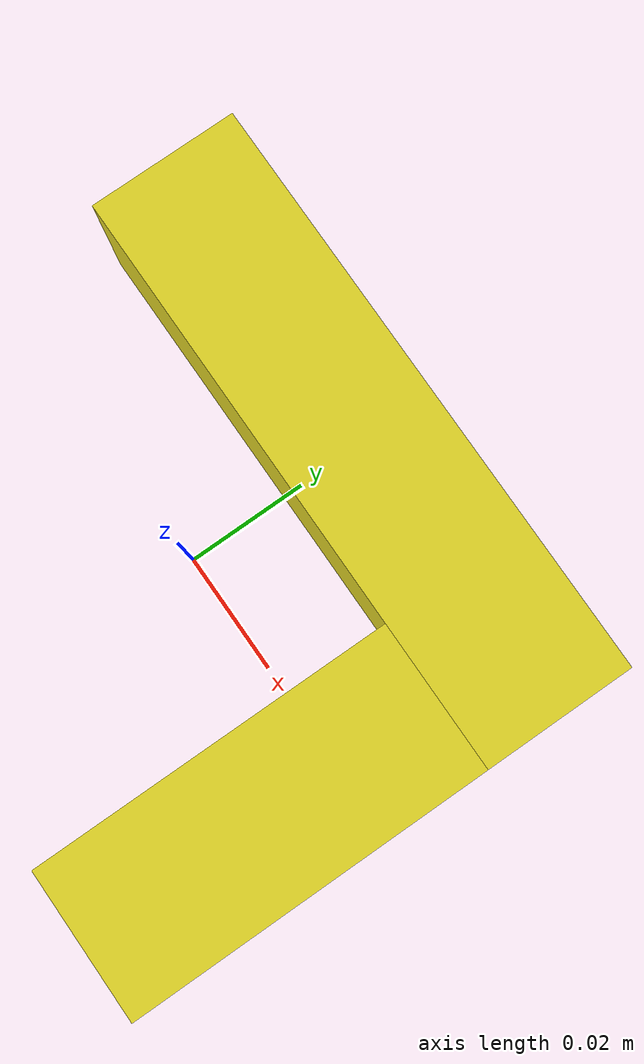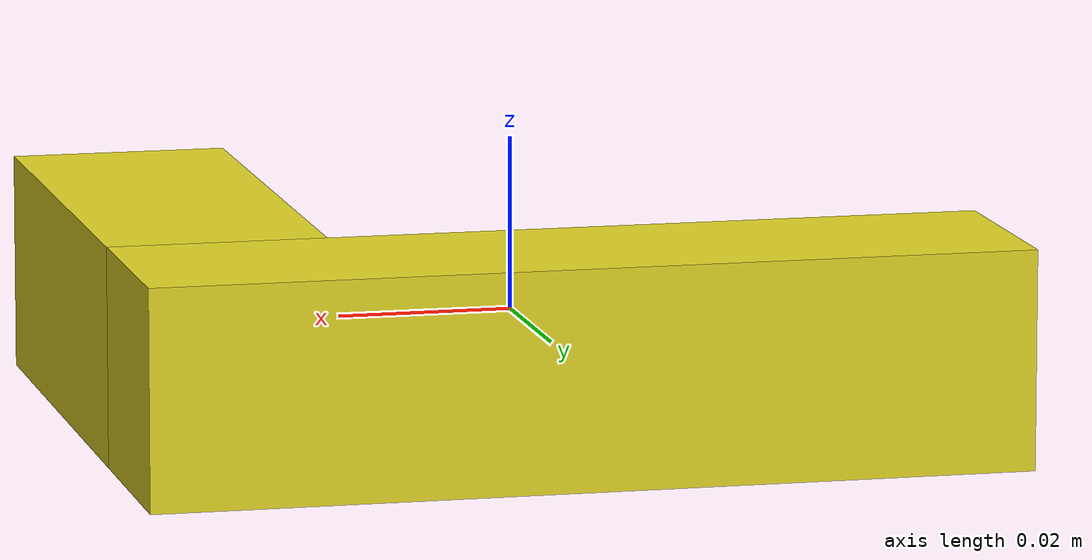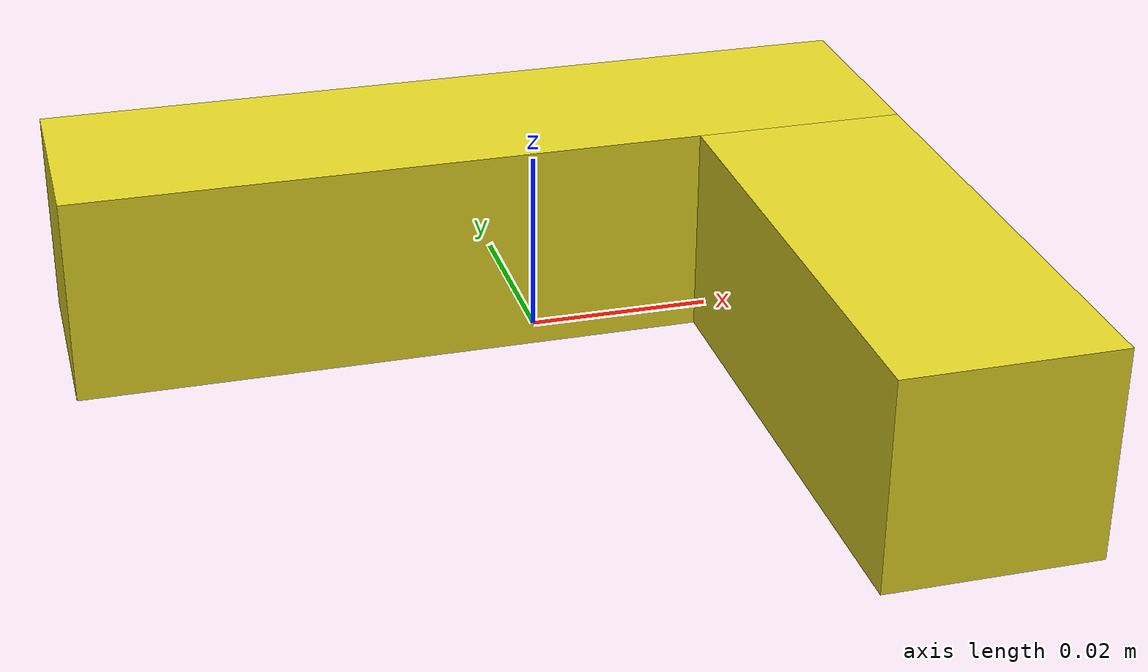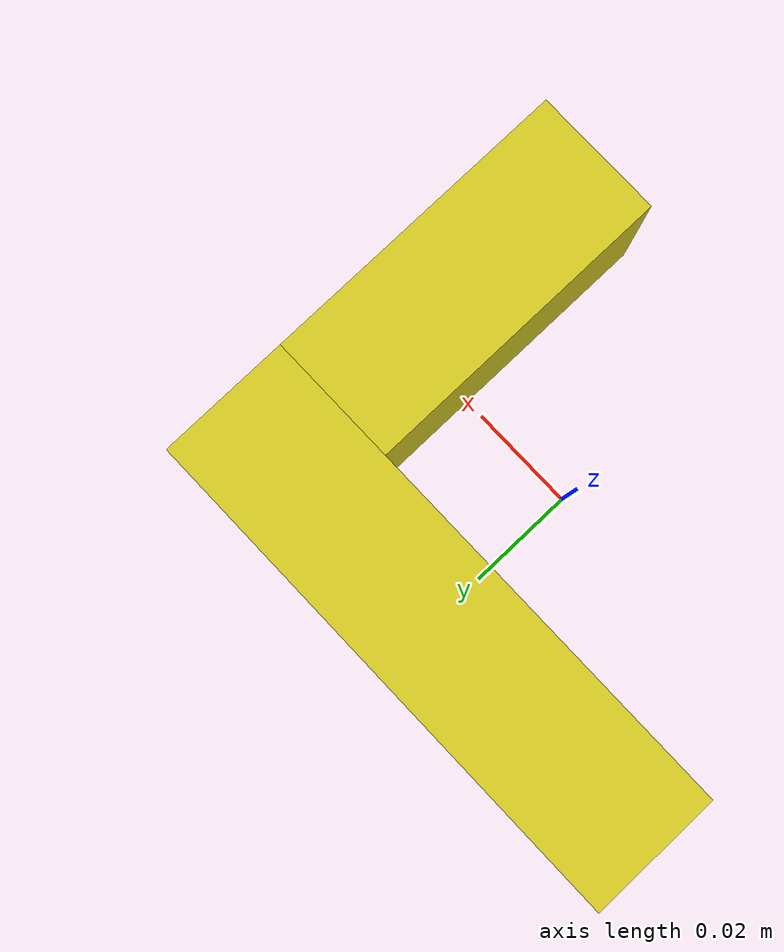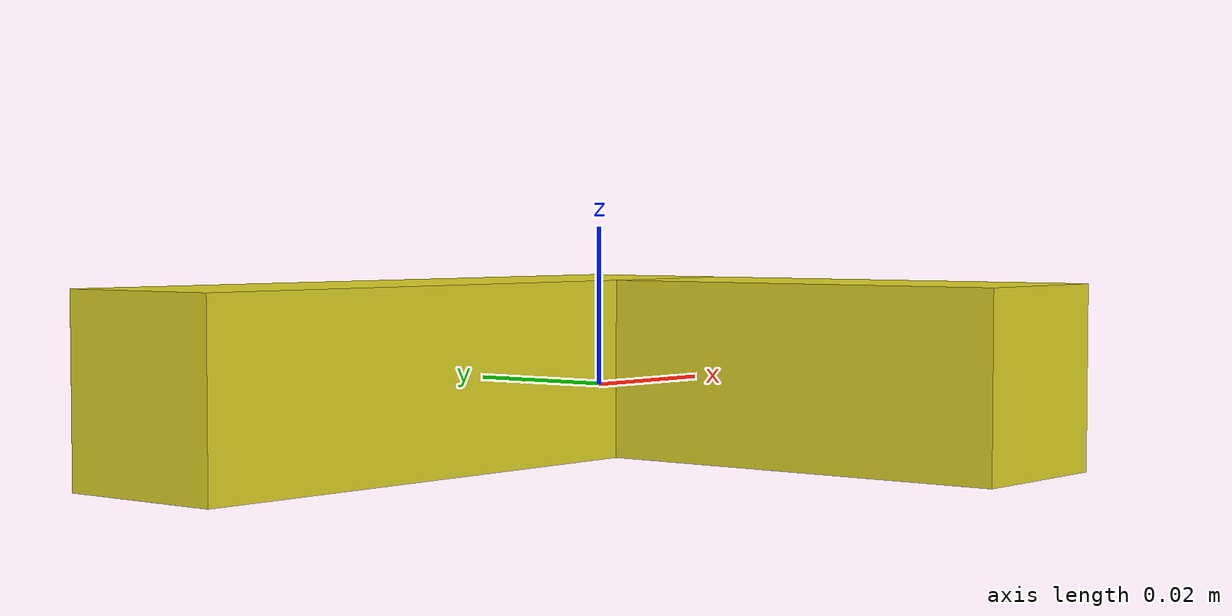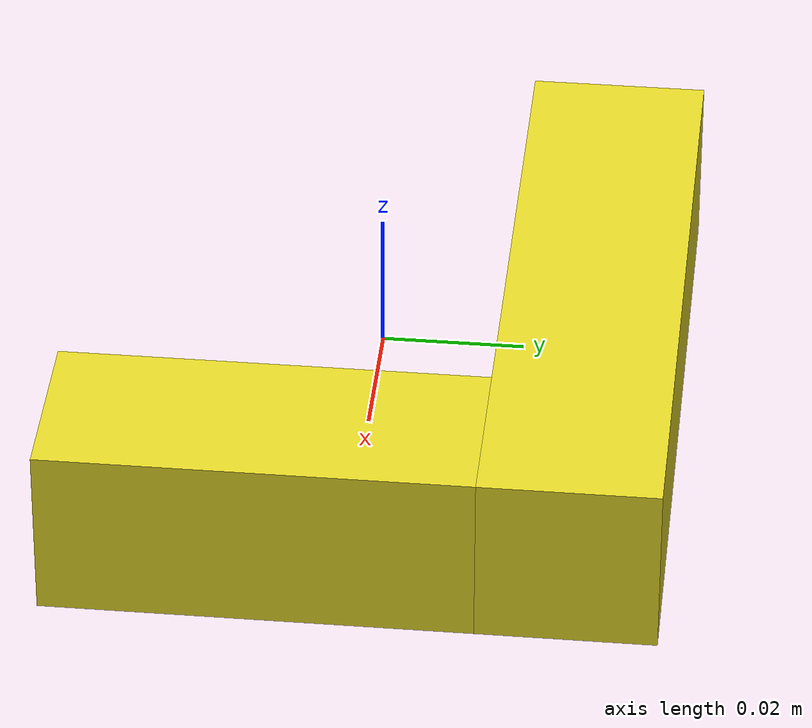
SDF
<?xml version='1.0'?>
<sdf version='1.6'>
  <model name='L_shape'>
    <link name='link'>
      <inertial>
        <mass>0.15</mass>
        <inertia>
          <ixx>0.0002</ixx> <ixy>0</ixy> <ixz>0</ixz>
          <iyy>0.0002</iyy> <iyz>0</iyz>
          <izz>0.0004</izz>
        </inertia>
      </inertial>

      <visual name='long_vis'>
        <pose>0 0.03 0 0 0 0</pose>
        <geometry><box><size>0.10 0.025 0.025</size></box></geometry>
        <material><script><name>Gazebo/Yellow</name></script></material>
      </visual>
      <collision name='long_col'>
        <pose>0 0.03 0 0 0 0</pose>
        <geometry><box><size>0.10 0.025 0.025</size></box></geometry>
        <surface><friction><ode><mu>100.0</mu><mu2>100.0</mu2></ode></friction></surface>
      </collision>

      <visual name='short_vis'>
        <pose>0.0375 -0.0125 0 0 0 0</pose> <geometry><box><size>0.025 0.06 0.025</size></box></geometry>
        <material><script><name>Gazebo/Yellow</name></script></material>
      </visual>
      <collision name='short_col'>
        <pose>0.0375 -0.0125 0 0 0 0</pose>
        <geometry><box><size>0.025 0.06 0.025</size></box></geometry>
        <surface><friction><ode><mu>100.0</mu><mu2>100.0</mu2></ode></friction></surface>
      </collision>
    </link>
  </model>
</sdf>
